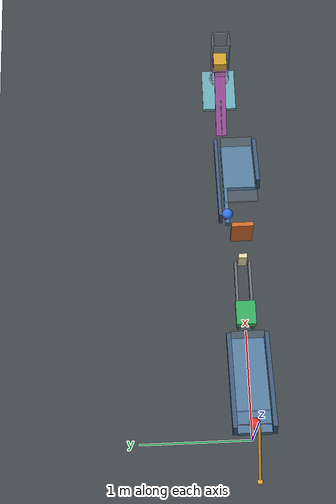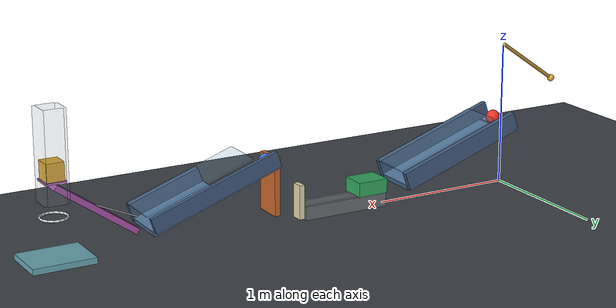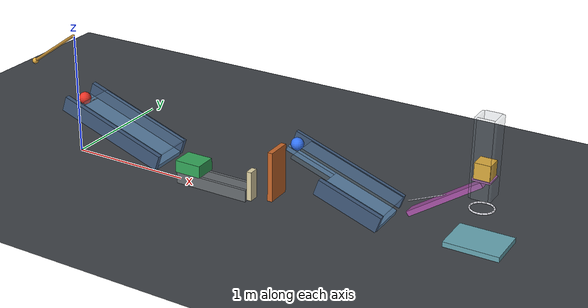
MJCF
<mujoco model="passive_chain_revised">
  <compiler angle="degree" autolimits="true"/>
  <option timestep="0.002" gravity="0 0 -9.81" integrator="implicitfast" solver="Newton" iterations="100" tolerance="1e-10"/>
  <size njmax="3000" nconmax="800"/>
  <visual>
    <global azimuth="135" elevation="-20"/>
    <headlight ambient="0.35 0.35 0.35" diffuse="0.65 0.65 0.65" specular="0.15 0.15 0.15"/>
  </visual>

  <!-- Contact damping approximates restitution 0.05; MuJoCo has no direct restitution attribute. -->
  <!-- Tangential friction is 0.68 throughout. -->
  <!-- All initial velocities are zero. Energy comes from gravity and a passive launcher spring. -->

  <worldbody>
    <light name="main_light" pos="1.5 -3 5" dir="0 0 -1"/>
    <camera name="overview" pos="2 -5 2.8" xyaxes="1 0 0 0 0.4 0.916515"/>
    <geom name="floor" type="plane" pos="0 0 0" size="6 3 0.1" condim="6" friction="0.68 0.005 0.001" solref="0.006 0.6901" solimp="0.95 0.99 0.001" rgba="0.24 0.26 0.28 1"/>

    <!-- Initial body orientation provides the 55-degree release angle. -->
    <!-- Pivot-to-lowest-point length is 0.55 m; total mass is 0.40 kg. -->
    <body name="pendulum1" pos="-0.001991 0 1.012032" quat="0.887010833 0 0.461748613 0">
      <joint name="pendulum1_hinge" type="hinge" axis="0 1 0" range="-110 0" damping="0.04" solreflimit="0.004 1" solimplimit="0.99 0.999 0.0001"/>
      <geom name="pendulum1_rod" type="capsule" fromto="0 0 -0.012 0 0 -0.510" size="0.012" mass="0.10" friction="0.68 0.005 0.001" solref="0.006 0.6901" solimp="0.95 0.99 0.001" rgba="0.75 0.55 0.20 1"/>
      <geom name="pendulum1_tip" type="sphere" pos="0 0 -0.525" size="0.025" mass="0.30" friction="0.68 0.005 0.001" solref="0.006 0.6901" solimp="0.95 0.99 0.001" rgba="0.90 0.68 0.25 1"/>
    </body>

    <body name="ball1" pos="0.073009 0 0.487032">
      <freejoint name="ball1_free"/>
      <geom name="ball1_geom" type="sphere" size="0.05" mass="0.20" condim="6" friction="0.68 0.005 0.001" solref="0.006 0.6901" solimp="0.95 0.99 0.001" rgba="0.90 0.20 0.15 1"/>
    </body>

    <!-- Deck: 0.95 m by 0.30 m, at 19 degrees, low-end upper surface z=0.15 m. -->
    <!-- The smaller chock holds ball1 at rest while reducing the release barrier. -->
    <body name="ramp1" pos="0.442610 0 0.285735" quat="0.986285602 0 0.165047606 0">
      <geom name="ramp1_deck" type="box" size="0.475 0.15 0.02" friction="0.68 0.005 0.001" solref="0.006 0.6901" solimp="0.95 0.99 0.001" rgba="0.32 0.46 0.60 1"/>
      <geom name="ramp1_chock" type="cylinder" fromto="-0.394604 -0.15 0.02 -0.394604 0.15 0.02" size="0.004" friction="0.68 0.005 0.001" solref="0.006 0.6901" solimp="0.95 0.99 0.001" rgba="0.65 0.70 0.75 1"/>
      <geom name="ramp1_left_rail" type="box" pos="0 -0.17 0.055" size="0.475 0.02 0.065" friction="0.68 0.005 0.001" solref="0.006 0.6901" solimp="0.95 0.99 0.001" rgba="0.25 0.35 0.48 1"/>
      <geom name="ramp1_right_rail" type="box" pos="0 0.17 0.055" size="0.475 0.02 0.065" friction="0.68 0.005 0.001" solref="0.006 0.6901" solimp="0.95 0.99 0.001" rgba="0.25 0.35 0.48 1"/>
      <geom name="ramp1_upper_guard" type="box" pos="0.075 0 0.135" size="0.40 0.15 0.01" friction="0.68 0.005 0.001" solref="0.006 0.6901" solimp="0.95 0.99 0.001" rgba="0.45 0.62 0.75 0.22"/>
    </body>

    <!-- Initial ramp-exit-to-cart-face gap: 0.12 m. -->
    <!-- Domino contact occurs at slide position 0.40 m. -->
    <!-- An additional 0.01 m prevents the joint stop from absorbing that collision first. -->
    <body name="cart1" pos="1.128243 0 0.15">
      <joint name="cart1_slide" type="slide" axis="1 0 0" range="0 0.41" damping="0.20" solreflimit="0.004 1" solimplimit="0.99 0.999 0.0001"/>
      <geom name="cart1_geom" type="box" size="0.11 0.09 0.05" mass="0.50" friction="0.68 0.005 0.001" solref="0.006 0.6901" solimp="0.95 0.99 0.001" rgba="0.20 0.65 0.35 1"/>
    </body>

    <!-- The ideal slide carries the load; visible rails have 3 mm clearance. -->
    <body name="cart1_track" pos="1.333243 0 0">
      <geom name="cart1_track_left" type="box" pos="0 -0.065 0.0485" size="0.315 0.012 0.0485" friction="0.68 0.005 0.001" solref="0.006 0.6901" solimp="0.95 0.99 0.001" rgba="0.40 0.42 0.44 1"/>
      <geom name="cart1_track_right" type="box" pos="0 0.065 0.0485" size="0.315 0.012 0.0485" friction="0.68 0.005 0.001" solref="0.006 0.6901" solimp="0.95 0.99 0.001" rgba="0.40 0.42 0.44 1"/>
    </body>

    <!-- Dimensions remain 0.08 by 0.04 by 0.24 m; the 0.04 m thickness is along x. -->
    <body name="domino1" pos="1.658243 0 0.12">
      <freejoint name="domino1_free"/>
      <geom name="domino1_geom" type="box" size="0.02 0.04 0.12" mass="0.25" friction="0.68 0.005 0.001" solref="0.006 0.6901" solimp="0.95 0.99 0.001" rgba="0.88 0.83 0.65 1"/>
    </body>

    <!-- Domino forward floor edge to flap face: 0.18 m. -->
    <body name="flap1" pos="1.878243 0 0.08">
      <joint name="flap1_hinge" type="hinge" axis="0 1 0" range="0 65" damping="0.04" solreflimit="0.004 1" solimplimit="0.99 0.999 0.0001"/>
      <geom name="flap1_geom" type="box" pos="0 0 0.20" size="0.02 0.10 0.20" mass="0.30" friction="0.68 0.005 0.001" solref="0.006 0.6901" solimp="0.95 0.99 0.001" rgba="0.78 0.40 0.16 1"/>
    </body>

    <body name="ball2" pos="1.978252 0.1325 0.487032">
      <freejoint name="ball2_free"/>
      <geom name="ball2_geom" type="sphere" size="0.05" mass="0.20" condim="6" friction="0.68 0.005 0.001" solref="0.006 0.6901" solimp="0.95 0.99 0.001" rgba="0.20 0.45 0.95 1"/>
    </body>

    <!-- The upper side strip leaves clearance for the flap's sweep. -->
    <!-- Overall deck length is 0.95 m; the lower deck is 0.30 m wide. -->
    <body name="ramp2" pos="2.347853 0 0.285735" quat="0.986285602 0 0.165047606 0">
      <geom name="ramp2_upper_strip" type="box" pos="-0.265 0.1325 0" size="0.21 0.0175 0.02" friction="0.68 0.005 0.001" solref="0.006 0.6901" solimp="0.95 0.99 0.001" rgba="0.32 0.46 0.60 1"/>
      <geom name="ramp2_lower_deck" type="box" pos="0.21 0 0" size="0.265 0.15 0.02" friction="0.68 0.005 0.001" solref="0.006 0.6901" solimp="0.95 0.99 0.001" rgba="0.32 0.46 0.60 1"/>
      <geom name="ramp2_chock" type="cylinder" fromto="-0.394604 0.115 0.02 -0.394604 0.15 0.02" size="0.004" friction="0.68 0.005 0.001" solref="0.006 0.6901" solimp="0.95 0.99 0.001" rgba="0.65 0.70 0.75 1"/>
      <geom name="ramp2_outer_rail" type="box" pos="0 0.1975 0.075" size="0.475 0.015 0.055" friction="0.68 0.005 0.001" solref="0.006 0.6901" solimp="0.95 0.99 0.001" rgba="0.25 0.35 0.48 1"/>
      <geom name="ramp2_lower_inner_rail" type="box" pos="0.21 -0.17 0.055" size="0.265 0.02 0.065" friction="0.68 0.005 0.001" solref="0.006 0.6901" solimp="0.95 0.99 0.001" rgba="0.25 0.35 0.48 1"/>
      <geom name="ramp2_upper_guard" type="box" pos="0.075 0 0.135" size="0.40 0.15 0.01" friction="0.68 0.005 0.001" solref="0.006 0.6901" solimp="0.95 0.99 0.001" rgba="0.45 0.62 0.75 0.22"/>
    </body>

    <!-- The spring anchor has no collision geometry. -->
    <body name="seesaw1_spring_anchor" pos="2.899274 0.1325 0.263806">
      <site name="seesaw1_spring_anchor_site" type="sphere" size="0.006" rgba="0.85 0.85 0.85 1"/>
    </body>

    <!-- The center-hinged beam starts inclined 35 degrees. -->
    <!-- Its leftmost surface is 0.10 m beyond the ramp exit. -->
    <!-- Beam and carrying shelf together have mass 0.55 kg. -->
    <!-- The over-centre spring initially supplies slightly less torque than the loaded beam requires. -->
    <!-- After an impact moves the beam, its spring moment increases and assists the launch. -->
    <body name="seesaw1" pos="3.181182 0.1325 0.366412" quat="0.953716951 0 -0.300705800 0">
      <joint name="seesaw1_hinge" type="hinge" axis="0 -1 0" range="0 40" damping="0.04" solreflimit="0.004 1" solimplimit="0.99 0.999 0.0001"/>
      <geom name="seesaw1_beam" type="box" size="0.325 0.05 0.02" mass="0.52" friction="0.68 0.005 0.001" solref="0.006 0.6901" solimp="0.95 0.99 0.001" rgba="0.65 0.32 0.65 1"/>
      <geom name="seesaw1_shelf" type="box" pos="0.345075 0 0.028670" quat="0.953716951 0 0.300705800 0" size="0.07 0.07 0.006" mass="0.03" friction="0.68 0.005 0.001" solref="0.006 0.6901" solimp="0.95 0.99 0.001" rgba="0.72 0.42 0.72 1"/>
      <site name="seesaw1_spring_attachment" type="sphere" pos="0.10 0 0" size="0.005" rgba="0.85 0.85 0.85 1"/>
    </body>

    <body name="block1" pos="3.447406 0.1325 0.653825">
      <freejoint name="block1_free"/>
      <geom name="block1_geom" type="box" size="0.06 0.06 0.06" mass="0.35" contype="3" conaffinity="3" friction="0.68 0.005 0.001" solref="0.006 0.6901" solimp="0.95 0.99 0.001" rgba="0.95 0.70 0.15 1"/>
    </body>

    <!-- These passive guides keep block1 over the ring while allowing vertical motion. -->
    <!-- Collision bit 2 isolates them from the launcher shelf. -->
    <body name="block1_guide" pos="3.447406 0.1325 0.75">
      <geom name="block1_guide_left" type="box" pos="-0.072 0 0" size="0.01 0.072 0.30" contype="2" conaffinity="2" friction="0.68 0.005 0.001" solref="0.006 0.6901" solimp="0.95 0.99 0.001" rgba="0.55 0.60 0.65 0.20"/>
      <geom name="block1_guide_right" type="box" pos="0.072 0 0" size="0.01 0.072 0.30" contype="2" conaffinity="2" friction="0.68 0.005 0.001" solref="0.006 0.6901" solimp="0.95 0.99 0.001" rgba="0.55 0.60 0.65 0.20"/>
      <geom name="block1_guide_front" type="box" pos="0 -0.072 0" size="0.062 0.01 0.30" contype="2" conaffinity="2" friction="0.68 0.005 0.001" solref="0.006 0.6901" solimp="0.95 0.99 0.001" rgba="0.55 0.60 0.65 0.20"/>
      <geom name="block1_guide_back" type="box" pos="0 0.072 0" size="0.062 0.01 0.30" contype="2" conaffinity="2" friction="0.68 0.005 0.001" solref="0.006 0.6901" solimp="0.95 0.99 0.001" rgba="0.55 0.60 0.65 0.20"/>
    </body>

    <!-- Ring plane is exactly 0.30 m below block1's initial center. -->
    <!-- Capsule centerline chords are 0.087 m from the center, with radius 0.007 m. -->
    <!-- Thus the inscribed clear diameter is 0.16 m, not the approximately 0.20 m outer diameter. -->
    <!-- A rigid 0.12 m cube cannot clear this opening; no collision filtering hides that conflict. -->
    <body name="ring1" pos="3.447406 0.1325 0.353825">
      <geom name="ring1_segment01" type="capsule" fromto="0.088704 0 0 0.081952 0.033945 0" size="0.007" friction="0.68 0.005 0.001" solref="0.006 0.6901" solimp="0.95 0.99 0.001" rgba="0.85 0.85 0.88 1"/>
      <geom name="ring1_segment02" type="capsule" fromto="0.081952 0.033945 0 0.062724 0.062724 0" size="0.007" friction="0.68 0.005 0.001" solref="0.006 0.6901" solimp="0.95 0.99 0.001" rgba="0.85 0.85 0.88 1"/>
      <geom name="ring1_segment03" type="capsule" fromto="0.062724 0.062724 0 0.033945 0.081952 0" size="0.007" friction="0.68 0.005 0.001" solref="0.006 0.6901" solimp="0.95 0.99 0.001" rgba="0.85 0.85 0.88 1"/>
      <geom name="ring1_segment04" type="capsule" fromto="0.033945 0.081952 0 0 0.088704 0" size="0.007" friction="0.68 0.005 0.001" solref="0.006 0.6901" solimp="0.95 0.99 0.001" rgba="0.85 0.85 0.88 1"/>
      <geom name="ring1_segment05" type="capsule" fromto="0 0.088704 0 -0.033945 0.081952 0" size="0.007" friction="0.68 0.005 0.001" solref="0.006 0.6901" solimp="0.95 0.99 0.001" rgba="0.85 0.85 0.88 1"/>
      <geom name="ring1_segment06" type="capsule" fromto="-0.033945 0.081952 0 -0.062724 0.062724 0" size="0.007" friction="0.68 0.005 0.001" solref="0.006 0.6901" solimp="0.95 0.99 0.001" rgba="0.85 0.85 0.88 1"/>
      <geom name="ring1_segment07" type="capsule" fromto="-0.062724 0.062724 0 -0.081952 0.033945 0" size="0.007" friction="0.68 0.005 0.001" solref="0.006 0.6901" solimp="0.95 0.99 0.001" rgba="0.85 0.85 0.88 1"/>
      <geom name="ring1_segment08" type="capsule" fromto="-0.081952 0.033945 0 -0.088704 0 0" size="0.007" friction="0.68 0.005 0.001" solref="0.006 0.6901" solimp="0.95 0.99 0.001" rgba="0.85 0.85 0.88 1"/>
      <geom name="ring1_segment09" type="capsule" fromto="-0.088704 0 0 -0.081952 -0.033945 0" size="0.007" friction="0.68 0.005 0.001" solref="0.006 0.6901" solimp="0.95 0.99 0.001" rgba="0.85 0.85 0.88 1"/>
      <geom name="ring1_segment10" type="capsule" fromto="-0.081952 -0.033945 0 -0.062724 -0.062724 0" size="0.007" friction="0.68 0.005 0.001" solref="0.006 0.6901" solimp="0.95 0.99 0.001" rgba="0.85 0.85 0.88 1"/>
      <geom name="ring1_segment11" type="capsule" fromto="-0.062724 -0.062724 0 -0.033945 -0.081952 0" size="0.007" friction="0.68 0.005 0.001" solref="0.006 0.6901" solimp="0.95 0.99 0.001" rgba="0.85 0.85 0.88 1"/>
      <geom name="ring1_segment12" type="capsule" fromto="-0.033945 -0.081952 0 0 -0.088704 0" size="0.007" friction="0.68 0.005 0.001" solref="0.006 0.6901" solimp="0.95 0.99 0.001" rgba="0.85 0.85 0.88 1"/>
      <geom name="ring1_segment13" type="capsule" fromto="0 -0.088704 0 0.033945 -0.081952 0" size="0.007" friction="0.68 0.005 0.001" solref="0.006 0.6901" solimp="0.95 0.99 0.001" rgba="0.85 0.85 0.88 1"/>
      <geom name="ring1_segment14" type="capsule" fromto="0.033945 -0.081952 0 0.062724 -0.062724 0" size="0.007" friction="0.68 0.005 0.001" solref="0.006 0.6901" solimp="0.95 0.99 0.001" rgba="0.85 0.85 0.88 1"/>
      <geom name="ring1_segment15" type="capsule" fromto="0.062724 -0.062724 0 0.081952 -0.033945 0" size="0.007" friction="0.68 0.005 0.001" solref="0.006 0.6901" solimp="0.95 0.99 0.001" rgba="0.85 0.85 0.88 1"/>
      <geom name="ring1_segment16" type="capsule" fromto="0.081952 -0.033945 0 0.088704 0 0" size="0.007" friction="0.68 0.005 0.001" solref="0.006 0.6901" solimp="0.95 0.99 0.001" rgba="0.85 0.85 0.88 1"/>
    </body>

    <!-- Door upper surface is 0.25 m below the ring plane. -->
    <!-- Its spring holds the initially horizontal panel against the starting stop. -->
    <body name="door1" pos="3.237406 0.1325 0.083825">
      <joint name="door1_hinge" type="hinge" axis="0 1 0" range="0 8" damping="0.04" stiffness="1.50" springref="-40" solreflimit="0.004 1" solimplimit="0.99 0.999 0.0001"/>
      <geom name="door1_geom" type="box" pos="0.21 0 0" size="0.21 0.16 0.02" mass="0.45" friction="0.68 0.005 0.001" solref="0.006 0.6901" solimp="0.95 0.99 0.001" rgba="0.40 0.65 0.70 1"/>
    </body>
  </worldbody>

  <tendon>
    <spatial name="seesaw1_launch_spring" stiffness="510" springlength="0.30" damping="0" width="0.004" rgba="0.80 0.80 0.85 1">
      <site site="seesaw1_spring_anchor_site"/>
      <site site="seesaw1_spring_attachment"/>
    </spatial>
  </tendon>

  <keyframe>
    <key name="start"/>
  </keyframe>
</mujoco>
